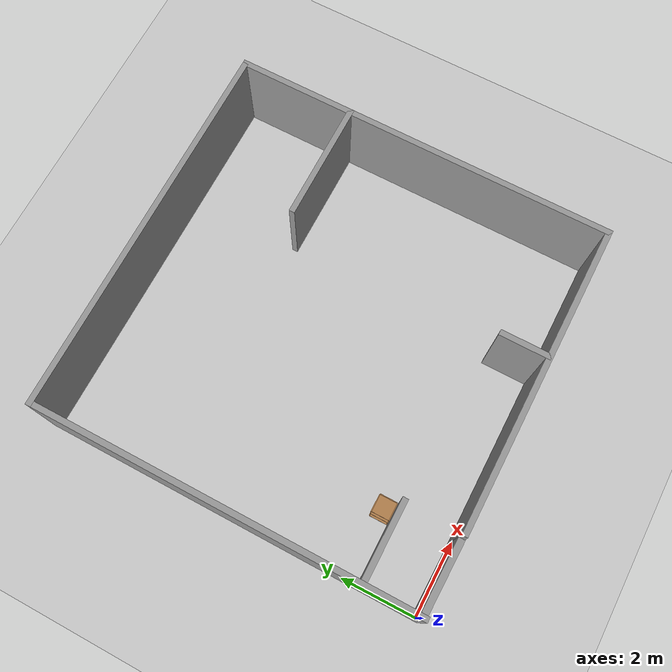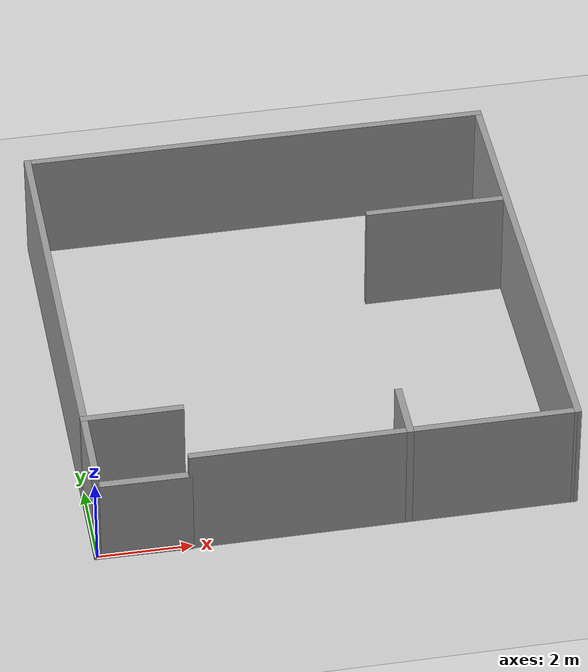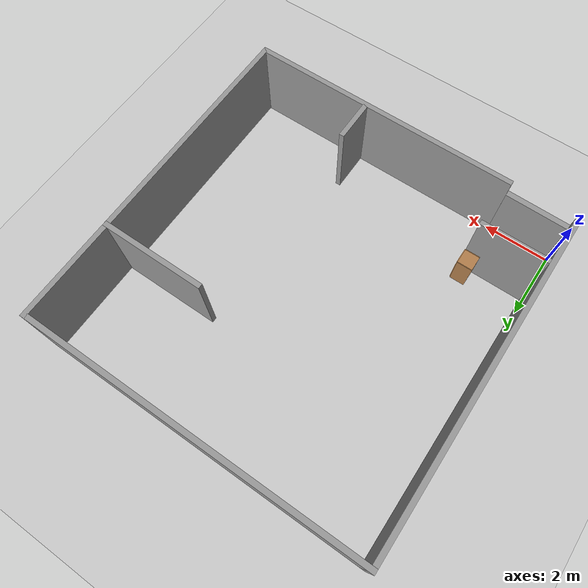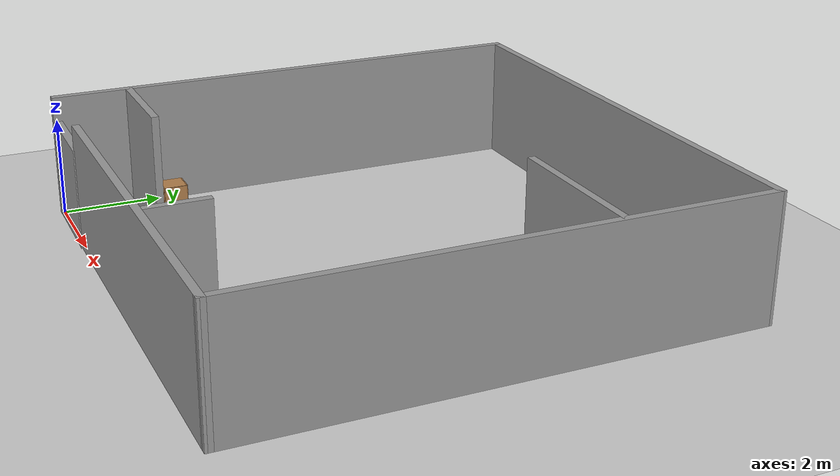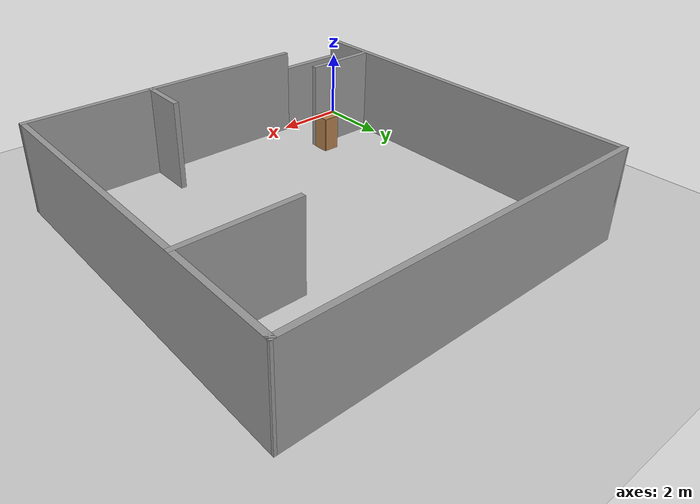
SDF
<sdf version="1.6">
 <world name="default">
  <plugin name="hello" filename="libhello.so"/>
  <light name="sun" type="directional">
   <pose>0 0 10 0 -0 0</pose>
   <diffuse>0.8 0.8 0.8 1</diffuse>
   <specular>0.2 0.2 0.2 1</specular>
   <attenuation>
    <range>1000</range>
    <constant>0.9</constant>
    <linear>0.01</linear>
    <quadratic>0.001</quadratic>
   </attenuation>
   <direction>-0.5 0.1 -0.9</direction>
  </light>
  <model name="ground_plane">
   <static>1</static>
   <link name="link">
    <collision name="collision">
     <geometry><plane><normal>0 0 1</normal><size>100 100</size></plane></geometry>
     <surface>
      <contact><collide_bitmask>65535</collide_bitmask></contact>
      <friction><ode><mu>100</mu><mu2>50</mu2></ode></friction>
     </surface>
    </collision>
    <visual name="visual">
     <cast_shadows>0</cast_shadows>
     <geometry><plane><normal>0 0 1</normal><size>100 100</size></plane></geometry>
     <material>
      <script><uri>file://media/materials/scripts/gazebo.material</uri><name>Gazebo/Grey</name></script>
     </material>
    </visual>
   </link>
  </model>
  <gravity>0 0 -9.8</gravity>
  <magnetic_field>6e-06 2.3e-05 -4.2e-05</magnetic_field>
  <atmosphere type="adiabatic"/>
  <physics name="default_physics" default="0" type="ode">
   <max_step_size>0.001</max_step_size>
   <real_time_factor>1</real_time_factor>
   <real_time_update_rate>1000</real_time_update_rate>
  </physics>
  <scene><ambient>0.4 0.4 0.4 1</ambient><background>0.7 0.7 0.7 1</background><shadows>1</shadows></scene>
  <spherical_coordinates>
   <surface_model>EARTH_WGS84</surface_model>
   <latitude_deg>0</latitude_deg>
   <longitude_deg>0</longitude_deg>
   <elevation>0</elevation>
   <heading_deg>0</heading_deg>
  </spherical_coordinates>
  <model name="building_final">
   <pose>5.00504 5 0 0 -0 0</pose>
   <link name="Door_0">
    <collision name="Door_0_Collision">
     <geometry><box><size>2 0.17 2</size></box></geometry>
     <pose>0 0 1 0 -0 0</pose>
    </collision>
    <visual name="Door_0_Visual">
     <pose>0 0 1 0 -0 0</pose>
     <geometry><box><size>2 0.17 2</size></box></geometry>
     <material>
      <script><uri>file://media/materials/scripts/gazebo.material</uri><name>Gazebo/Grey</name></script>
     </material>
    </visual>
    <pose>-4.00504 -5 0 0 -0 3.12819</pose>
   </link>
   <link name="Wall_0">
    <collision name="Wall_0_Collision">
     <geometry><box><size>10.15 0.15 2.5</size></box></geometry>
     <pose>0 0 1.25 0 -0 0</pose>
    </collision>
    <visual name="Wall_0_Visual">
     <pose>0 0 1.25 0 -0 0</pose>
     <geometry><box><size>10.15 0.15 2.5</size></box></geometry>
     <material>
      <script><uri>file://media/materials/scripts/gazebo.material</uri><name>Gazebo/Grey</name></script>
      <ambient>1 1 1 1</ambient>
     </material>
     <meta><layer>0</layer></meta>
    </visual>
    <pose>-5.00504 0 0 0 -0 1.5708</pose>
   </link>
   <link name="Wall_1">
    <collision name="Wall_1_Collision">
     <geometry><box><size>10.15 0.15 2.5</size></box></geometry>
     <pose>0 0 1.25 0 -0 0</pose>
    </collision>
    <visual name="Wall_1_Visual">
     <pose>0 0 1.25 0 -0 0</pose>
     <geometry><box><size>10.15 0.15 2.5</size></box></geometry>
     <material>
      <script><uri>file://media/materials/scripts/gazebo.material</uri><name>Gazebo/Grey</name></script>
      <ambient>1 1 1 1</ambient>
     </material>
     <meta><layer>0</layer></meta>
    </visual>
    <pose>-0.005037 5 0 0 -0 0</pose>
   </link>
   <link name="Wall_2">
    <collision name="Wall_2_Collision">
     <geometry><box><size>10.15 0.15 2.5</size></box></geometry>
     <pose>0 0 1.25 0 -0 0</pose>
    </collision>
    <visual name="Wall_2_Visual">
     <pose>0 0 1.25 0 -0 0</pose>
     <geometry><box><size>10.15 0.15 2.5</size></box></geometry>
     <material>
      <script><uri>file://media/materials/scripts/gazebo.material</uri><name>Gazebo/Grey</name></script>
      <ambient>1 1 1 1</ambient>
     </material>
     <meta><layer>0</layer></meta>
    </visual>
    <pose>4.99996 0 0 0 0 -1.5698</pose>
   </link>
   <link name="Wall_3">
    <collision name="Wall_3_Collision">
     <geometry><box><size>8.16 0.15 2.5</size></box></geometry>
     <pose>0 0 1.25 0 -0 0</pose>
    </collision>
    <visual name="Wall_3_Visual">
     <pose>0 0 1.25 0 -0 0</pose>
     <geometry><box><size>8.16 0.15 2.5</size></box></geometry>
     <material>
      <script><uri>file://media/materials/scripts/gazebo.material</uri><name>Gazebo/Grey</name></script>
      <ambient>1 1 1 1</ambient>
     </material>
     <meta><layer>0</layer></meta>
    </visual>
    <pose>0.999963 -5 0 0 -0 3.14159</pose>
   </link>
   <static>1</static>
  </model>
  <model name="assymetry">
   <pose>5 3.5 0 0 -0 0</pose>
   <link name="Wall_3">
    <collision name="Wall_3_Collision">
     <geometry><box><size>1.35 0.15 2.5</size></box></geometry>
     <pose>0 0 1.25 0 -0 0</pose>
    </collision>
    <visual name="Wall_3_Visual">
     <pose>0 0 1.25 0 -0 0</pose>
     <geometry><box><size>1.35 0.15 2.5</size></box></geometry>
     <material>
      <script><uri>file://media/materials/scripts/gazebo.material</uri><name>Gazebo/Grey</name></script>
      <ambient>0 0 0 1</ambient>
     </material>
     <meta><layer>0</layer></meta>
    </visual>
    <pose>1.51 -2.9 0 0 -0 1.5708</pose>
   </link>
   <link name="Wall_4">
    <collision name="Wall_4_Collision">
     <geometry><box><size>2.15 0.15 2.5</size></box></geometry>
     <pose>0 0 1.25 0 -0 0</pose>
    </collision>
    <visual name="Wall_4_Visual">
     <pose>0 0 1.25 0 -0 0</pose>
     <geometry><box><size>2.15 0.15 2.5</size></box></geometry>
     <material>
      <script><uri>file://media/materials/scripts/gazebo.material</uri><name>Gazebo/Grey</name></script>
      <ambient>1 1 1 1</ambient>
     </material>
     <meta><layer>0</layer></meta>
    </visual>
    <pose>-4 -2 0 0 -0 0</pose>
   </link>
   <link name="Wall_6">
    <collision name="Wall_6_Collision">
     <geometry><box><size>3.15 0.15 2.5</size></box></geometry>
     <pose>0 0 1.25 0 -0 0</pose>
    </collision>
    <visual name="Wall_6_Visual">
     <pose>0 0 1.25 0 -0 0</pose>
     <geometry><box><size>3.15 0.15 2.5</size></box></geometry>
     <material>
      <script><uri>file://media/materials/scripts/gazebo.material</uri><name>Gazebo/Grey</name></script>
      <ambient>0 0 0 1</ambient>
     </material>
     <meta><layer>0</layer></meta>
    </visual>
    <pose>3.5 3.5 0 0 -0 0</pose>
   </link>
   <static>1</static>
  </model>
  <model name="cafe_table">
   <model name="cabinet">
    <static>1</static>
    <link name="cabinet_bottom_plate">
     <inertial>
      <pose>0 0 -1 0 -0 0</pose>
      <inertia><ixx>2.05</ixx><ixy>0</ixy><ixz>0</ixz><iyy>2.05</iyy><iyz>0</iyz><izz>2.05</izz></inertia>
      <mass>25</mass>
     </inertial>
     <collision name="cabinet_bottom_plate_geom">
      <pose>0 0 0.01 0 -0 0</pose>
      <geometry><box><size>0.45 0.45 0.02</size></box></geometry>
     </collision>
     <visual name="cabinet_bottom_plate_geom_visual">
      <pose>0 0 0.01 0 -0 0</pose>
      <geometry><box><size>0.45 0.45 0.02</size></box></geometry>
      <material>
       <script><uri>file://media/materials/scripts/gazebo.material</uri><name>Gazebo/Wood</name></script>
      </material>
     </visual>
     <collision name="cabinet_bottom_plate_geom_cabinet_back_plate">
      <pose>0.235 0 0.51 0 -0 0</pose>
      <geometry><box><size>0.02 0.45 1.02</size></box></geometry>
     </collision>
     <visual name="cabinet_bottom_plate_geom_cabinet_back_plate_visual">
      <pose>0.235 0 0.51 0 -0 0</pose>
      <geometry><box><size>0.02 0.45 1.02</size></box></geometry>
      <material>
       <script><uri>file://media/materials/scripts/gazebo.material</uri><name>Gazebo/Wood</name></script>
      </material>
     </visual>
     <collision name="cabinet_bottom_plate_geom_cabinet_left_plate">
      <pose>0 0.235 0.51 0 -0 0</pose>
      <geometry><box><size>0.45 0.02 1.02</size></box></geometry>
     </collision>
     <visual name="cabinet_bottom_plate_geom_cabinet_left_plate_visual">
      <pose>0 0.235 0.51 0 -0 0</pose>
      <geometry><box><size>0.45 0.02 1.02</size></box></geometry>
      <material>
       <script><uri>file://media/materials/scripts/gazebo.material</uri><name>Gazebo/Wood</name></script>
      </material>
     </visual>
     <collision name="cabinet_bottom_plate_geom_cabinet_middle_plate">
      <pose>0 0 0.51 0 -0 0</pose>
      <geometry><box><size>0.45 0.45 0.02</size></box></geometry>
     </collision>
     <visual name="cabinet_bottom_plate_geom_cabinet_middle_plate_visual">
      <pose>0 0 0.51 0 -0 0</pose>
      <geometry><box><size>0.45 0.45 0.02</size></box></geometry>
      <material>
       <script><uri>file://media/materials/scripts/gazebo.material</uri><name>Gazebo/Wood</name></script>
      </material>
     </visual>
     <collision name="cabinet_bottom_plate_geom_cabinet_right_plate">
      <pose>0 -0.235 0.51 0 -0 0</pose>
      <geometry><box><size>0.45 0.02 1.02</size></box></geometry>
     </collision>
     <visual name="cabinet_bottom_plate_geom_cabinet_right_plate_visual">
      <pose>0 -0.235 0.51 0 -0 0</pose>
      <geometry><box><size>0.45 0.02 1.02</size></box></geometry>
      <material>
       <script><uri>file://media/materials/scripts/gazebo.material</uri><name>Gazebo/Wood</name></script>
      </material>
     </visual>
     <collision name="cabinet_bottom_plate_geom_cabinet_top_plate">
      <pose>0 0 1.01 0 -0 0</pose>
      <geometry><box><size>0.45 0.45 0.02</size></box></geometry>
     </collision>
     <visual name="cabinet_bottom_plate_geom_cabinet_top_plate_visual">
      <pose>0 0 1.01 0 -0 0</pose>
      <geometry><box><size>0.45 0.45 0.02</size></box></geometry>
      <material>
       <script><uri>file://media/materials/scripts/gazebo.material</uri><name>Gazebo/Wood</name></script>
      </material>
     </visual>
    </link>
    <pose>0 -4e-06 0 0 -0 0</pose>
   </model>
   <static>0</static>
   <pose>1.85293 1.8224 0 0 -0 0</pose>
  </model>
 </world>
</sdf>
